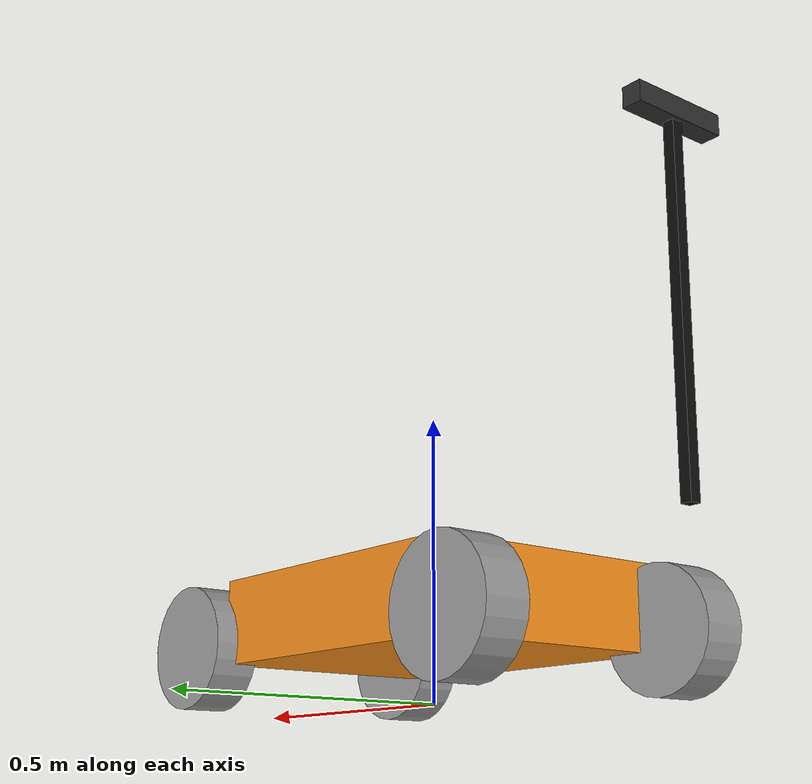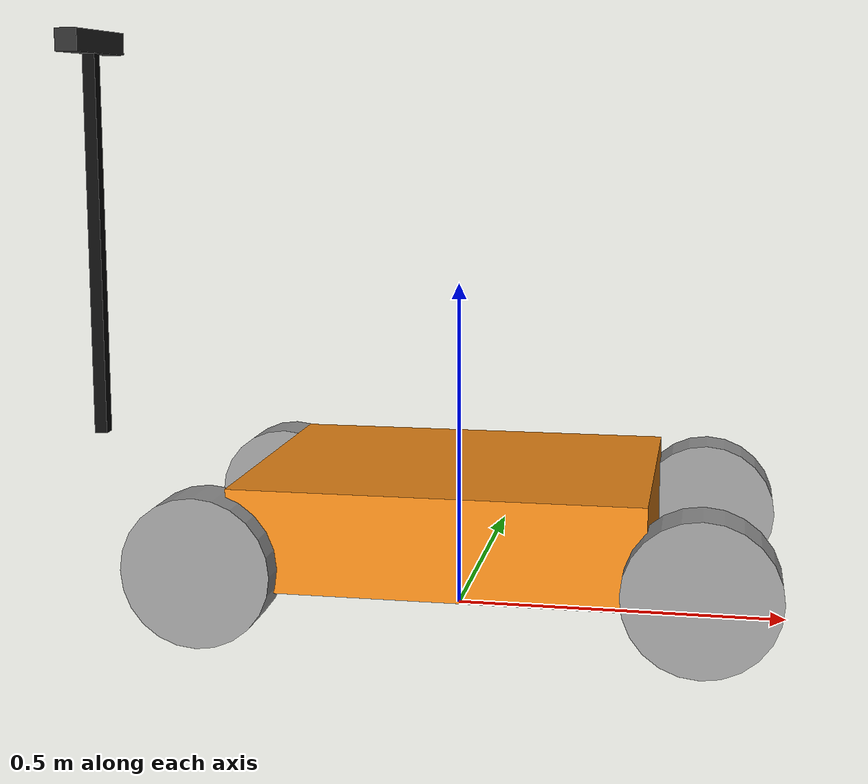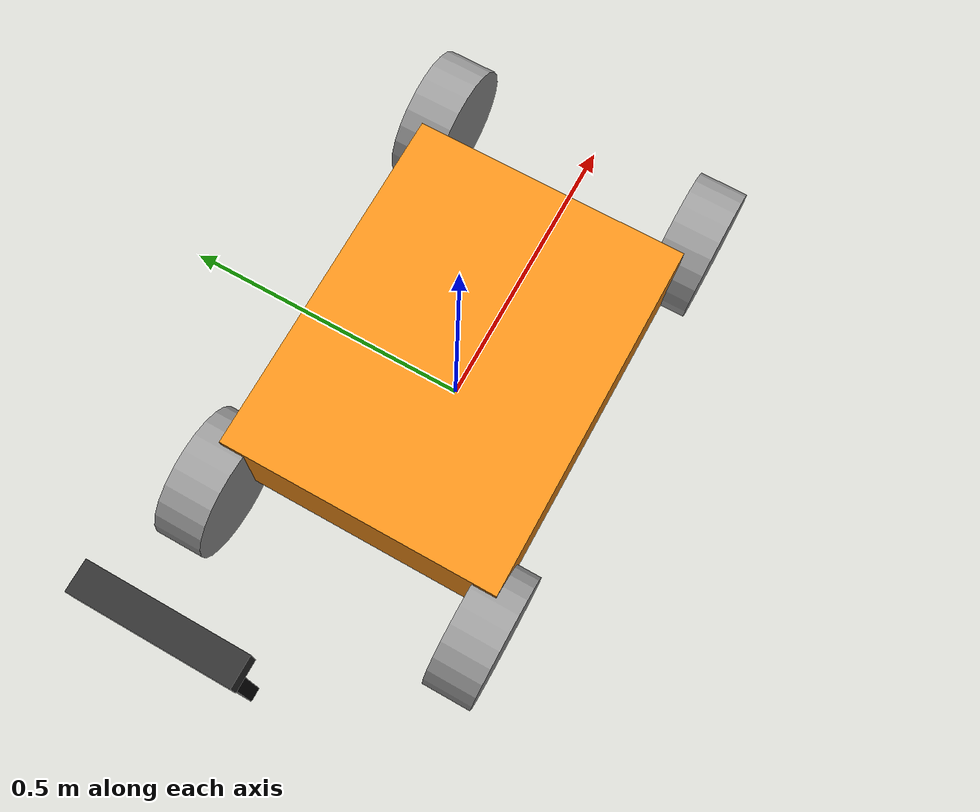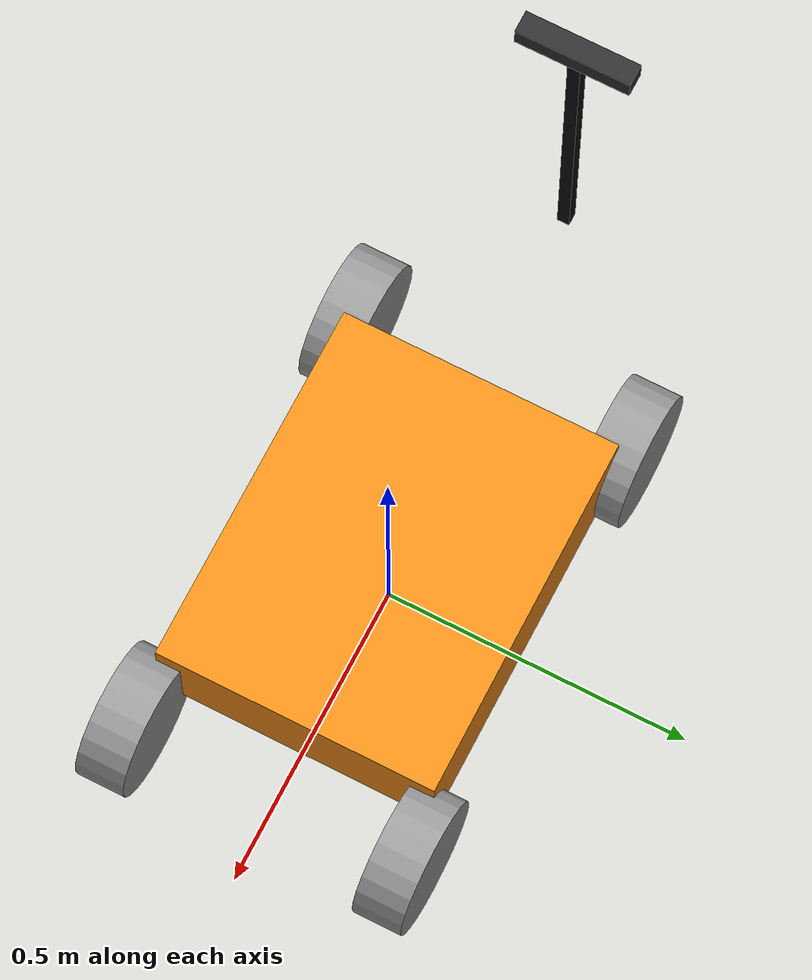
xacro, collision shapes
<?xml version="1.0"?>
<robot name="smart_camaro" xmlns:xacro="http://ros.org/wiki/xacro">

  <xacro:include filename="camaro.gazebo" />

  <!-- ========== CHASSI PRINCIPAL ========== -->
  <link name="base_link">
    <inertial>
      <origin rpy="0 0 0" xyz="0 0 0"/>
      <mass value="5"/>
      <inertia ixx="0.041666" ixy="0.0" ixz="0.0"
               iyy="0.108333" iyz="0.0"
               izz="0.141666"/>
    </inertial>

    <visual>
      <origin xyz="0 0 0.18" rpy="0 0 0"/>

      <geometry>
        <mesh filename="package://camaro_description/meshes/camaronovo.glb"
              scale="0.0012 0.0012 0.0012"/>
      </geometry>
    </visual>

    <collision>
      <origin xyz="0 0 0.15" rpy="0 0 0"/>
      <geometry>
        <box size="0.6 0.46 0.15"/>
      </geometry>
    </collision>
  </link>

  <!-- ========== DIREÇÃO DIANTEIRA ESQUERDA ========== -->
  <link name="front_left_wheel_steering_link">
    <inertial>
      <origin rpy="0 0 0" xyz="0 0 0"/>
      <mass value="0.5"/>
      <inertia ixx="0.001" ixy="0.0" ixz="0.0" iyy="0.001" iyz="0.0" izz="0.001"/>
    </inertial>
    <collision>
      <geometry><box size="0.05 0.05 0.05"/></geometry>
    </collision>
  </link>

  <joint name="front_left_wheel_steering_joint" type="revolute">
    <parent link="base_link"/>
    <child link="front_left_wheel_steering_link"/>
    <origin xyz="0.375 0.23 0.11" rpy="0 0 0"/>
    <axis xyz="0 0 1"/>
    <limit lower="-0.6" upper="0.6" effort="25" velocity="1.0"/>
  </joint>

  <!-- ========== DIREÇÃO DIANTEIRA DIREITA ========== -->
  <link name="front_right_wheel_steering_link">
    <inertial>
      <origin rpy="0 0 0" xyz="0 0 0"/>
      <mass value="0.5"/>
      <inertia ixx="0.001" ixy="0.0" ixz="0.0" iyy="0.001" iyz="0.0" izz="0.001"/>
    </inertial>
    <collision>
      <geometry><box size="0.05 0.05 0.05"/></geometry>
    </collision>
  </link>

  <joint name="front_right_wheel_steering_joint" type="revolute">
    <parent link="base_link"/>
    <child link="front_right_wheel_steering_link"/>
    <origin xyz="0.375 -0.23 0.11" rpy="0 0 0"/>
    <axis xyz="0 0 1"/>
    <limit lower="-0.6" upper="0.6" effort="25" velocity="1.0"/>
  </joint>

  <!-- ========== RODA DIANTEIRA ESQUERDA ========== -->
<link name="front_left_wheel_link">
  <inertial>
    <origin rpy="0 0 0" xyz="0 0 0"/>
    <mass value="1"/>
    <inertia ixx="0.0036" ixy="0.0" ixz="0.0" iyy="0.0061" iyz="0.0" izz="0.0036"/>
  </inertial>
  <visual>
    <origin xyz="0 0.0313 0" rpy="0 0 -1.5707"/>
    <geometry>
      <mesh filename="package://camaro_description/meshes/rodanova.glb"
            scale="0.0008462 0.0008462 0.0008462"/>
    </geometry>
  </visual>
  <collision>
    <origin xyz="0 0 0" rpy="1.5707 0 0"/>
    <geometry><cylinder radius="0.11" length="0.08"/></geometry>
  </collision>
</link>

  <joint name="front_left_wheel_joint" type="revolute">
    <parent link="front_left_wheel_steering_link"/>
    <child link="front_left_wheel_link"/>
    <origin xyz="0 0 0" rpy="0 0 0"/>
    <axis xyz="0 1 0"/>
    <limit lower="-1.79769e+308" upper="1.79769e+308" effort="100" velocity="100"/>
  </joint>

  <!-- ========== RODA DIANTEIRA DIREITA ========== -->
<link name="front_right_wheel_link">
  <inertial>
    <origin rpy="0 0 0" xyz="0 0 0"/>
    <mass value="1"/>
    <inertia ixx="0.0036" ixy="0.0" ixz="0.0" iyy="0.0061" iyz="0.0" izz="0.0036"/>
  </inertial>
  <visual>
    <!-- Roda DIREITA aponta p/ fora (-Y) — par espelhado da esquerda. -->
    <origin xyz="0 -0.0313 0" rpy="0 0 1.5707"/>
    <geometry>
      <mesh filename="package://camaro_description/meshes/rodanova.glb"
            scale="0.0008462 0.0008462 0.0008462"/>
    </geometry>
  </visual>
  <collision>
    <origin xyz="0 0 0" rpy="1.5707 0 0"/>
    <geometry><cylinder radius="0.11" length="0.08"/></geometry>
  </collision>
</link>

  <joint name="front_right_wheel_joint" type="revolute">
    <parent link="front_right_wheel_steering_link"/>
    <child link="front_right_wheel_link"/>
    <origin xyz="0 0 0" rpy="0 0 0"/>
    <axis xyz="0 1 0"/>
    <limit lower="-1.79769e+308" upper="1.79769e+308" effort="100" velocity="100"/>
  </joint>

  <!-- ========== RODA TRASEIRA ESQUERDA ========== -->
<link name="rear_left_wheel_link">
  <inertial>
    <origin rpy="0 0 0" xyz="0 0 0"/>
    <mass value="1"/>
    <inertia ixx="0.0036" ixy="0.0" ixz="0.0" iyy="0.0061" iyz="0.0" izz="0.0036"/>
  </inertial>
  <visual>
    <origin xyz="0 0.0313 0" rpy="0 0 -1.5707"/>
    <geometry>
      <mesh filename="package://camaro_description/meshes/rodanova.glb"
            scale="0.0008462 0.0008462 0.0008462"/>
    </geometry>
  </visual>
  <collision>
    <origin xyz="0 0 0" rpy="1.5707 0 0"/>
    <geometry><cylinder radius="0.11" length="0.08"/></geometry>
  </collision>
</link>

  <joint name="rear_left_wheel_joint" type="revolute">
    <parent link="base_link"/>
    <child link="rear_left_wheel_link"/>
    <origin xyz="-0.335 0.23 0.11" rpy="0 0 0"/>
    <axis xyz="0 1 0"/>
    <limit lower="-1.79769e+308" upper="1.79769e+308" effort="100" velocity="100"/>
  </joint>

  <!-- ========== RODA TRASEIRA DIREITA ========== -->
<link name="rear_right_wheel_link">
  <inertial>
    <origin rpy="0 0 0" xyz="0 0 0"/>
    <mass value="1"/>
    <inertia ixx="0.0036" ixy="0.0" ixz="0.0" iyy="0.0061" iyz="0.0" izz="0.0036"/>
  </inertial>
  <visual>
    <origin xyz="0 -0.0313 0" rpy="0 0 1.5707"/>
    <geometry>
      <mesh filename="package://camaro_description/meshes/rodanova.glb"
            scale="0.0008462 0.0008462 0.0008462"/>
    </geometry>
  </visual>
  <collision>
    <origin xyz="0 0 0" rpy="1.5707 0 0"/>
    <geometry><cylinder radius="0.11" length="0.08"/></geometry>
  </collision>
</link>

  <joint name="rear_right_wheel_joint" type="revolute">
    <parent link="base_link"/>
    <child link="rear_right_wheel_link"/>
    <!-- JUNTA NEUTRA: Sem rpy aqui! -->
    <origin xyz="-0.335 -0.23 0.11" rpy="0 0 0"/>
    <axis xyz="0 1 0"/>
    <limit lower="-1.79769e+308" upper="1.79769e+308" effort="100" velocity="100"/>
  </joint>

  <!-- ========== SENSOR LIDAR (CORRIGIDO: SEM COLISÃO) ========== -->
  <!-- Link do LiDAR SEM visual por enquanto (sensor continua ativo via camaro.gazebo) -->
  <link name="lidarA2">
    <inertial>
      <origin rpy="0 0 0" xyz="0 0 0"/>
      <mass value="0.1"/>
      <inertia ixx="0.001" ixy="0.0" ixz="0.0" iyy="0.001" iyz="0.0" izz="0.001"/>
    </inertial>
  </link>

  <joint name="lidar_to_chassi" type="fixed">
    <parent link="base_link"/>
    <child link="lidarA2"/>
    <!-- LiDAR colado na parte de baixo do chassi, na frente, perto das rodas -->
    <origin xyz="0.55 0 0.06" rpy="0 0 0"/>
  </joint>

  <!-- ========== ZED 2 (VISUAL BÁSICO: suporte + corpo) ========== -->
  <!-- Visual provisório; depois trocamos pelo mesh real da ZED 2 -->
  <!-- Haste reduzida apoiada no topo do aerofólio -->
  <link name="zed_support">
    <inertial>
      <origin rpy="0 0 0" xyz="0 0 0.30"/>
      <mass value="0.05"/>
      <inertia ixx="0.0001" ixy="0.0" ixz="0.0" iyy="0.0001" iyz="0.0" izz="0.0001"/>
    </inertial>
    <visual>
      <origin rpy="0 0 0" xyz="0 0 0.30"/>
      <geometry><box size="0.02 0.02 0.60"/></geometry>
      <material name="preto">
        <color rgba="0.05 0.05 0.05 1"/>
      </material>
    </visual>
    <visual>
      <origin rpy="0 0 0" xyz="0 0 0.585"/>
      <geometry><box size="0.06 0.06 0.03"/></geometry>
      <material name="preto">
        <color rgba="0.05 0.05 0.05 1"/>
      </material>
    </visual>
    <collision>
      <origin rpy="0 0 0" xyz="0 0 0.30"/>
      <geometry><box size="0.02 0.02 0.60"/></geometry>
    </collision>
  </link>

  <joint name="zed_support_joint" type="fixed">
    <parent link="base_link"/>
    <child link="zed_support"/>
    <origin xyz="-0.58 0 0.25" rpy="0 0 0"/>
  </joint>

  <link name="zed_mount">
    <inertial>
      <origin rpy="0 0 0" xyz="0 0 0.015"/>
      <mass value="0.08"/>
      <inertia ixx="0.0005" ixy="0.0" ixz="0.0" iyy="0.0005" iyz="0.0" izz="0.0005"/>
    </inertial>
    <visual>
      <origin rpy="0 0 -1.5708" xyz="0 0 0.0018"/>
      <geometry>
        <mesh filename="package://camaro_description/meshes/zed2_detailed.stl"/>
      </geometry>
      <material name="zed_body">
        <color rgba="0.18 0.18 0.18 1"/>
      </material>
    </visual>
    <collision>
      <origin rpy="0 0 0" xyz="0 0 0.015"/>
      <geometry><box size="0.035 0.18 0.035"/></geometry>
    </collision>
  </link>

  <joint name="zed_mount_joint" type="fixed">
    <parent link="zed_support"/>
    <child link="zed_mount"/>
    <origin xyz="0 0 0.60" rpy="0 0 0"/>
  </joint>

  <!-- Câmera do usuário (2D), virada para trás, sobre a ZED -->
  <link name="camera_user_link"/>
  <joint name="camera_user_joint" type="fixed">
    <parent link="zed_mount"/>
    <child link="camera_user_link"/>
    <origin xyz="0 0 0.03" rpy="0 0 3.14159"/>
  </joint>

</robot>
